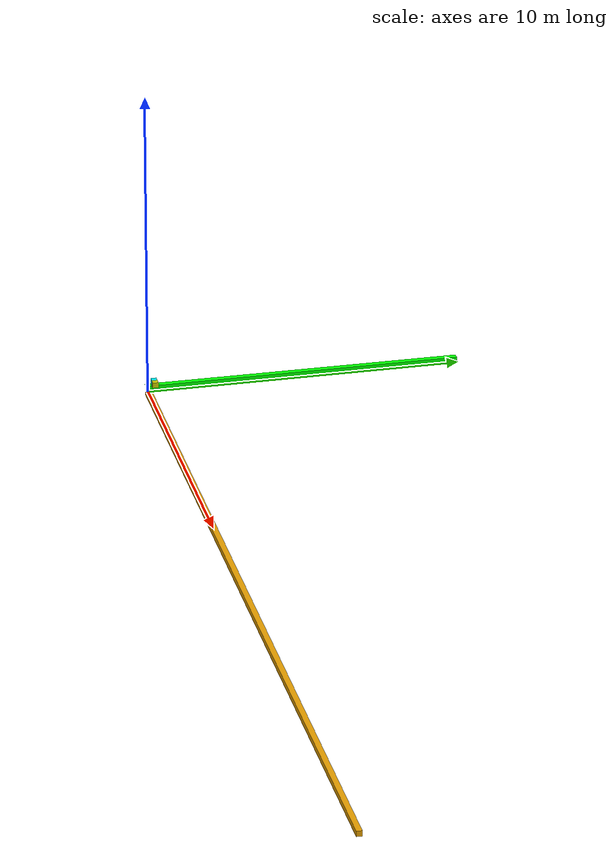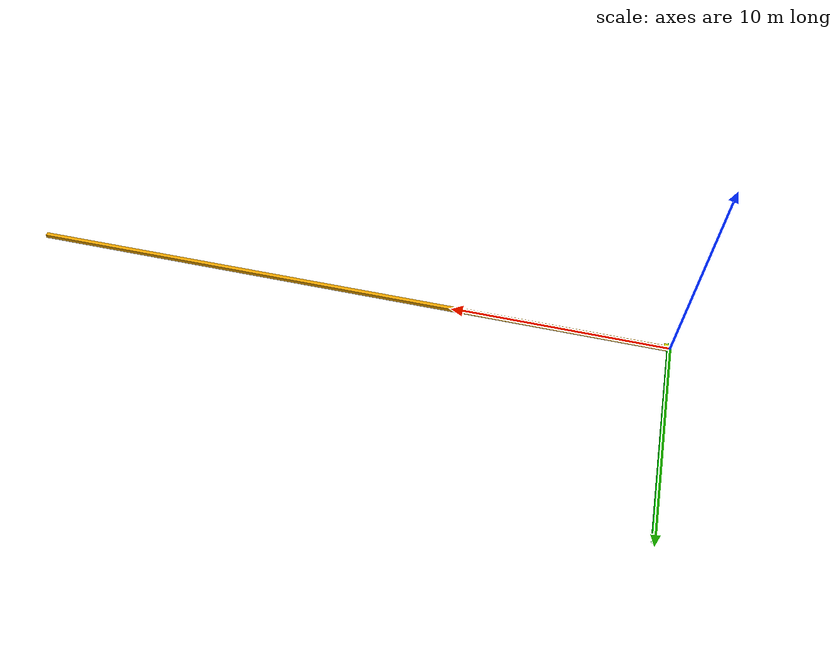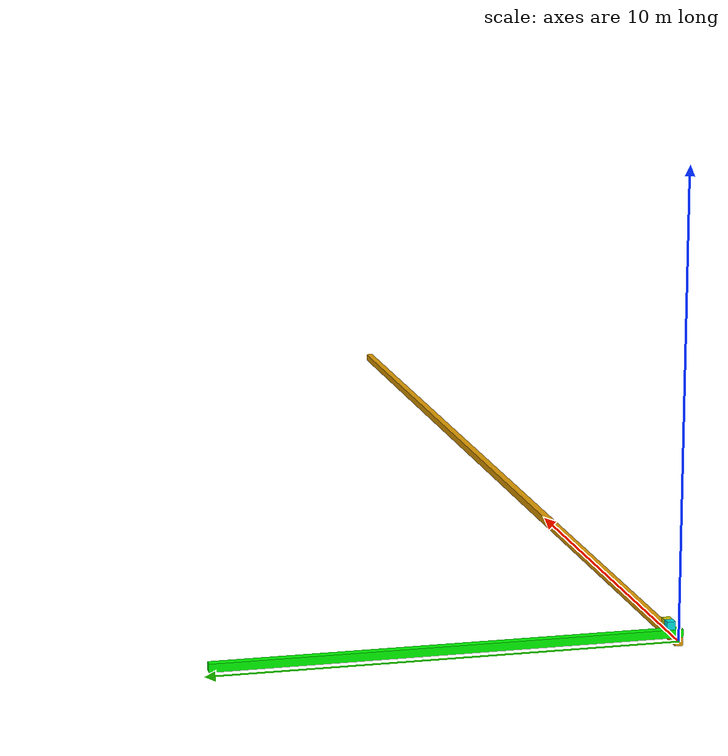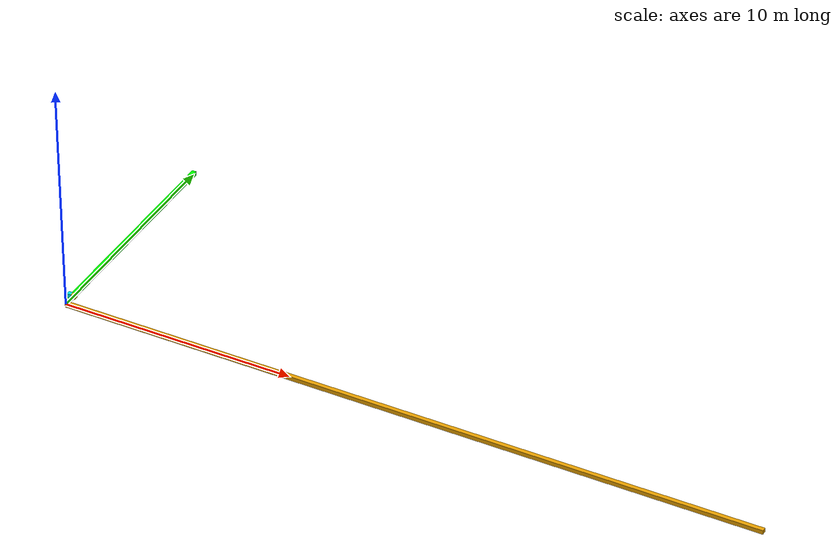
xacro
<?xml version="1.0"?>
<robot xmlns:xacro="http://www.ros.org/wiki/xacro" name="prismatic_cartesian_robot">
  <link name="base_link">
    <visual>
      <origin xyz="15 0 0" rpy="0 0 0"/>
      <geometry>
        <box size="30 0.18 0.18"/>
      </geometry>
    </visual>
  </link>
  <joint name="x" type="prismatic">
    <origin xyz="0.09 4.91 0.18" rpy="0 0 0"/>
    <axis xyz="1 0 0"/>
    <limit lower="0" upper="30" effort="100" velocity="1"/>
    <parent link="base_link"/>
    <child link="link1"/>
  </joint>
  <link name="link1">
    <visual>
      <origin xyz="0 0 0" rpy="0 0 0"/>
      <geometry>
        <box size="0.18 10 0.18"/>
      </geometry>
      <material name="Green1">
		<color rgba="0 1 0 1"/>
      </material>
    </visual>
  </link>
  <joint name="y" type="prismatic">
    <origin xyz="0 -4.73 0.18" rpy="0 0 0"/>
    <axis xyz="0 1 0"/>
    <limit lower="0" upper="9.46" effort="100" velocity="1"/>
    <parent link="link1"/>
    <child link="link2"/>
  </joint>
  <link name="link2">
    <visual>
      <origin xyz="0 0 0" rpy="0 0 0"/>
      <geometry>
        <box size="0.18 0.18 0.18"/>
      </geometry>
      <material name="Cyan1">
	  	<color rgba="0 0.9 0.9 1.0"/>
      </material>
    </visual>
  </link>
  <joint name="z" type="prismatic">
    <origin xyz="0.18 0 0" rpy="0 0 0"/>
    <axis xyz="0 0 1"/>
    <limit lower="-9.64" upper="0" effort="100" velocity="1"/>
    <parent link="link2"/>
    <child link="link3"/>
  </joint>
  <link name="link3">
    <visual>
      <origin xyz="0 0 0" rpy="0 0 0"/>
      <geometry>
        <box size="0.18 0.18 0.18"/>
      </geometry>
	     	<material name="Yellow2">
				<color rgba="0.8 0.8 0 1.0"/>
			</material>
    </visual>
  </link>
</robot>
